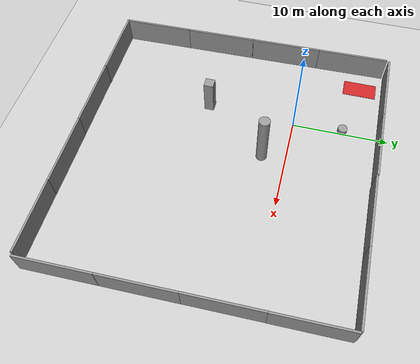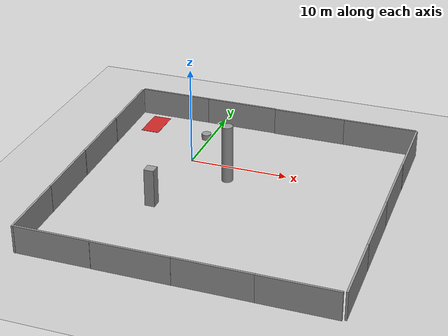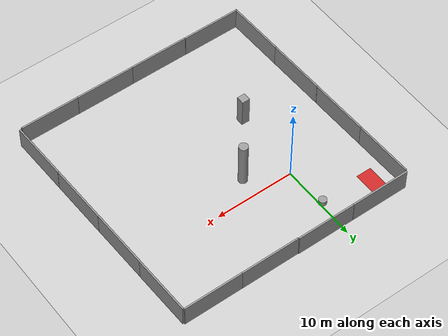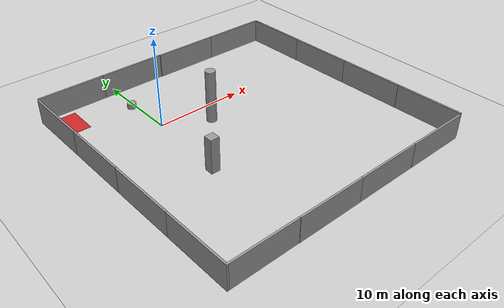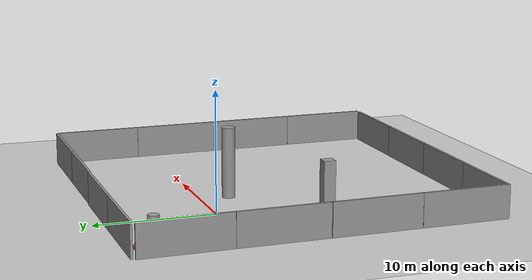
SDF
<sdf version="1.7">
 <world name="default">
  <light name="sun" type="directional">
   <pose>0 0 10 0 -0 0</pose>
   <diffuse>0.8 0.8 0.8 1</diffuse>
   <specular>0.2 0.2 0.2 1</specular>
   <attenuation>
    <range>1000</range>
    <constant>0.9</constant>
    <linear>0.01</linear>
    <quadratic>0.001</quadratic>
   </attenuation>
   <direction>-0.5 0.1 -0.9</direction>
   <spot><inner_angle>0</inner_angle><outer_angle>0</outer_angle><falloff>0</falloff></spot>
  </light>
  <model name="ground_plane">
   <static>1</static>
   <link name="link">
    <collision name="collision">
     <geometry><plane><normal>0 0 1</normal><size>100 100</size></plane></geometry>
     <surface>
      <contact><collide_bitmask>65535</collide_bitmask></contact>
      <friction><ode><mu>100</mu><mu2>50</mu2></ode></friction>
     </surface>
    </collision>
    <visual name="visual">
     <cast_shadows>0</cast_shadows>
     <geometry><plane><normal>0 0 1</normal><size>100 100</size></plane></geometry>
     <material>
      <script><uri>file://media/materials/scripts/gazebo.material</uri><name>Gazebo/Grey</name></script>
     </material>
    </visual>
   </link>
  </model>
  <gravity>0 0 -9.8</gravity>
  <magnetic_field>6e-06 2.3e-05 -4.2e-05</magnetic_field>
  <atmosphere type="adiabatic"/>
  <physics type="ode">
   <max_step_size>0.001</max_step_size>
   <real_time_factor>1</real_time_factor>
   <real_time_update_rate>1000</real_time_update_rate>
  </physics>
  <scene><ambient>0.4 0.4 0.4 1</ambient><background>0.7 0.7 0.7 1</background><shadows>1</shadows></scene>
  <spherical_coordinates>
   <surface_model>EARTH_WGS84</surface_model>
   <latitude_deg>0</latitude_deg>
   <longitude_deg>0</longitude_deg>
   <elevation>0</elevation>
   <heading_deg>0</heading_deg>
  </spherical_coordinates>
  <model name="grey_wall">
   <static>1</static>
   <link name="link">
    <pose>0 0 1.4 0 -0 0</pose>
    <collision name="collision"><geometry><box><size>7.5 0.2 2.8</size></box></geometry></collision>
    <visual name="visual">
     <cast_shadows>0</cast_shadows>
     <geometry><box><size>7.5 0.2 2.8</size></box></geometry>
     <material>
      <script>
       <uri>model://grey_wall/materials/scripts</uri>
       <uri>model://grey_wall/materials/textures</uri>
       <name>vrc/grey_wall</name>
      </script>
     </material>
    </visual>
   </link>
   <pose>-5.28411 8.94306 0 0 -0 0</pose>
  </model>
  <model name="grey_wall_0">
   <static>1</static>
   <link name="link">
    <pose>0 0 1.4 0 -0 0</pose>
    <collision name="collision"><geometry><box><size>7.5 0.2 2.8</size></box></geometry></collision>
    <visual name="visual">
     <cast_shadows>0</cast_shadows>
     <geometry><box><size>7.5 0.2 2.8</size></box></geometry>
     <material>
      <script>
       <uri>model://grey_wall/materials/scripts</uri>
       <uri>model://grey_wall/materials/textures</uri>
       <name>vrc/grey_wall</name>
      </script>
     </material>
    </visual>
   </link>
   <pose>2.23596 8.94056 0 0 -0 0</pose>
  </model>
  <model name="grey_wall_1">
   <static>1</static>
   <link name="link">
    <pose>0 0 1.4 0 -0 0</pose>
    <collision name="collision"><geometry><box><size>7.5 0.2 2.8</size></box></geometry></collision>
    <visual name="visual">
     <cast_shadows>0</cast_shadows>
     <geometry><box><size>7.5 0.2 2.8</size></box></geometry>
     <material>
      <script>
       <uri>model://grey_wall/materials/scripts</uri>
       <uri>model://grey_wall/materials/textures</uri>
       <name>vrc/grey_wall</name>
      </script>
     </material>
    </visual>
   </link>
   <pose>-9.03702 4.94701 0 0 0 -1.55</pose>
  </model>
  <model name="grey_wall_1_clone">
   <static>1</static>
   <link name="link">
    <pose>0 0 1.4 0 -0 0</pose>
    <collision name="collision"><geometry><box><size>7.5 0.2 2.8</size></box></geometry></collision>
    <visual name="visual">
     <cast_shadows>0</cast_shadows>
     <geometry><box><size>7.5 0.2 2.8</size></box></geometry>
     <material>
      <script>
       <uri>model://grey_wall/materials/scripts</uri>
       <uri>model://grey_wall/materials/textures</uri>
       <name>vrc/grey_wall</name>
      </script>
     </material>
    </visual>
   </link>
   <pose>-8.88636 -2.56773 0 0 0 -1.55</pose>
  </model>
  <model name="grey_wall_1_clone_clone">
   <static>1</static>
   <link name="link">
    <pose>0 0 1.4 0 -0 0</pose>
    <collision name="collision"><geometry><box><size>7.5 0.2 2.8</size></box></geometry></collision>
    <visual name="visual">
     <cast_shadows>0</cast_shadows>
     <geometry><box><size>7.5 0.2 2.8</size></box></geometry>
     <material>
      <script>
       <uri>model://grey_wall/materials/scripts</uri>
       <uri>model://grey_wall/materials/textures</uri>
       <name>vrc/grey_wall</name>
      </script>
     </material>
    </visual>
   </link>
   <pose>-8.74116 -10.1056 0 0 0 -1.55</pose>
  </model>
  <model name="grey_wall_1_clone_clone_clone">
   <static>1</static>
   <link name="link">
    <pose>0 0 1.4 0 -0 0</pose>
    <collision name="collision"><geometry><box><size>7.5 0.2 2.8</size></box></geometry></collision>
    <visual name="visual">
     <cast_shadows>0</cast_shadows>
     <geometry><box><size>7.5 0.2 2.8</size></box></geometry>
     <material>
      <script>
       <uri>model://grey_wall/materials/scripts</uri>
       <uri>model://grey_wall/materials/textures</uri>
       <name>vrc/grey_wall</name>
      </script>
     </material>
    </visual>
   </link>
   <pose>-8.58924 -17.6095 0 0 0 -1.55</pose>
  </model>
  <model name="grey_wall_clone">
   <static>1</static>
   <link name="link">
    <pose>0 0 1.4 0 -0 0</pose>
    <collision name="collision"><geometry><box><size>7.5 0.2 2.8</size></box></geometry></collision>
    <visual name="visual">
     <cast_shadows>0</cast_shadows>
     <geometry><box><size>7.5 0.2 2.8</size></box></geometry>
     <material>
      <script>
       <uri>model://grey_wall/materials/scripts</uri>
       <uri>model://grey_wall/materials/textures</uri>
       <name>vrc/grey_wall</name>
      </script>
     </material>
    </visual>
   </link>
   <pose>9.755 8.87215 0 0 -0 0</pose>
  </model>
  <model name="grey_wall_clone_clone">
   <static>1</static>
   <link name="link">
    <pose>0 0 1.4 0 -0 0</pose>
    <collision name="collision"><geometry><box><size>7.5 0.2 2.8</size></box></geometry></collision>
    <visual name="visual">
     <cast_shadows>0</cast_shadows>
     <geometry><box><size>7.5 0.2 2.8</size></box></geometry>
     <material>
      <script>
       <uri>model://grey_wall/materials/scripts</uri>
       <uri>model://grey_wall/materials/textures</uri>
       <name>vrc/grey_wall</name>
      </script>
     </material>
    </visual>
   </link>
   <pose>17.2526 8.86719 0 0 -0 0</pose>
  </model>
  <model name="grey_wall_clone_clone_0">
   <static>1</static>
   <link name="link">
    <pose>0 0 1.4 0 -0 0</pose>
    <collision name="collision"><geometry><box><size>7.5 0.2 2.8</size></box></geometry></collision>
    <visual name="visual">
     <cast_shadows>0</cast_shadows>
     <geometry><box><size>7.5 0.2 2.8</size></box></geometry>
     <material>
      <script>
       <uri>model://grey_wall/materials/scripts</uri>
       <uri>model://grey_wall/materials/textures</uri>
       <name>vrc/grey_wall</name>
      </script>
     </material>
    </visual>
   </link>
   <pose>-4.82051 -21.2466 0 0 -0 0</pose>
  </model>
  <model name="grey_wall_clone_clone_1">
   <static>1</static>
   <link name="link">
    <pose>0 0 1.4 0 -0 0</pose>
    <collision name="collision"><geometry><box><size>7.5 0.2 2.8</size></box></geometry></collision>
    <visual name="visual">
     <cast_shadows>0</cast_shadows>
     <geometry><box><size>7.5 0.2 2.8</size></box></geometry>
     <material>
      <script>
       <uri>model://grey_wall/materials/scripts</uri>
       <uri>model://grey_wall/materials/textures</uri>
       <name>vrc/grey_wall</name>
      </script>
     </material>
    </visual>
   </link>
   <pose>2.70417 -21.269 0 0 -0 0</pose>
  </model>
  <model name="grey_wall_clone_clone_2">
   <static>1</static>
   <link name="link">
    <pose>0 0 1.4 0 -0 0</pose>
    <collision name="collision"><geometry><box><size>7.5 0.2 2.8</size></box></geometry></collision>
    <visual name="visual">
     <cast_shadows>0</cast_shadows>
     <geometry><box><size>7.5 0.2 2.8</size></box></geometry>
     <material>
      <script>
       <uri>model://grey_wall/materials/scripts</uri>
       <uri>model://grey_wall/materials/textures</uri>
       <name>vrc/grey_wall</name>
      </script>
     </material>
    </visual>
   </link>
   <pose>10.1916 -21.257 0 0 -0 0</pose>
  </model>
  <model name="grey_wall_clone_clone_3">
   <static>1</static>
   <link name="link">
    <pose>0 0 1.4 0 -0 0</pose>
    <collision name="collision"><geometry><box><size>7.5 0.2 2.8</size></box></geometry></collision>
    <visual name="visual">
     <cast_shadows>0</cast_shadows>
     <geometry><box><size>7.5 0.2 2.8</size></box></geometry>
     <material>
      <script>
       <uri>model://grey_wall/materials/scripts</uri>
       <uri>model://grey_wall/materials/textures</uri>
       <name>vrc/grey_wall</name>
      </script>
     </material>
    </visual>
   </link>
   <pose>17.6653 -21.2683 0 0 -0 0</pose>
  </model>
  <model name="grey_wall_1_clone_0">
   <static>1</static>
   <link name="link">
    <pose>0 0 1.4 0 -0 0</pose>
    <collision name="collision"><geometry><box><size>7.5 0.2 2.8</size></box></geometry></collision>
    <visual name="visual">
     <cast_shadows>0</cast_shadows>
     <geometry><box><size>7.5 0.2 2.8</size></box></geometry>
     <material>
      <script>
       <uri>model://grey_wall/materials/scripts</uri>
       <uri>model://grey_wall/materials/textures</uri>
       <name>vrc/grey_wall</name>
      </script>
     </material>
    </visual>
   </link>
   <pose>21.1622 5.0533 0 0 0 -1.55</pose>
  </model>
  <model name="grey_wall_1_clone_1">
   <static>1</static>
   <link name="link">
    <pose>0 0 1.4 0 -0 0</pose>
    <collision name="collision"><geometry><box><size>7.5 0.2 2.8</size></box></geometry></collision>
    <visual name="visual">
     <cast_shadows>0</cast_shadows>
     <geometry><box><size>7.5 0.2 2.8</size></box></geometry>
     <material>
      <script>
       <uri>model://grey_wall/materials/scripts</uri>
       <uri>model://grey_wall/materials/textures</uri>
       <name>vrc/grey_wall</name>
      </script>
     </material>
    </visual>
   </link>
   <pose>21.3037 -2.43604 0 0 0 -1.55</pose>
  </model>
  <model name="grey_wall_1_clone_2">
   <static>1</static>
   <link name="link">
    <pose>0 0 1.4 0 -0 0</pose>
    <collision name="collision"><geometry><box><size>7.5 0.2 2.8</size></box></geometry></collision>
    <visual name="visual">
     <cast_shadows>0</cast_shadows>
     <geometry><box><size>7.5 0.2 2.8</size></box></geometry>
     <material>
      <script>
       <uri>model://grey_wall/materials/scripts</uri>
       <uri>model://grey_wall/materials/textures</uri>
       <name>vrc/grey_wall</name>
      </script>
     </material>
    </visual>
   </link>
   <pose>21.4676 -9.92866 0 0 0 -1.55</pose>
  </model>
  <model name="grey_wall_1_clone_3">
   <static>1</static>
   <link name="link">
    <pose>0 0 1.4 0 -0 0</pose>
    <collision name="collision"><geometry><box><size>7.5 0.2 2.8</size></box></geometry></collision>
    <visual name="visual">
     <cast_shadows>0</cast_shadows>
     <geometry><box><size>7.5 0.2 2.8</size></box></geometry>
     <material>
      <script>
       <uri>model://grey_wall/materials/scripts</uri>
       <uri>model://grey_wall/materials/textures</uri>
       <name>vrc/grey_wall</name>
      </script>
     </material>
    </visual>
   </link>
   <pose>21.6236 -17.4551 0 0 0 -1.55</pose>
  </model>
  <model name="unit_box">
   <pose>-6.66305 6.46222 0.015234 -7e-06 5e-06 0.000632</pose>
   <link name="link">
    <inertial>
     <mass>1</mass>
     <inertia>
      <ixx>0.166667</ixx>
      <ixy>0</ixy>
      <ixz>0</ixz>
      <iyy>0.166667</iyy>
      <iyz>0</iyz>
      <izz>0.166667</izz>
     </inertia>
    </inertial>
    <collision name="collision"><geometry><box><size>1.92629 3.55861 0.030547</size></box></geometry></collision>
    <visual name="visual">
     <geometry><box><size>1.92629 3.55861 0.030547</size></box></geometry>
     <material>
      <script><name>Gazebo/Red</name><uri>file://media/materials/scripts/gazebo.material</uri></script>
     </material>
    </visual>
   </link>
  </model>
  <model name="obstacle_2">
   <pose>4.7267 -2.49814 2.97341 0 -0 0.001763</pose>
   <link name="link">
    <inertial>
     <mass>1</mass>
     <inertia><ixx>0.145833</ixx><ixy>0</ixy><ixz>0</ixz><iyy>0.145833</iyy><iyz>0</iyz><izz>0.125</izz></inertia>
    </inertial>
    <collision name="collision">
     <geometry><cylinder><radius>0.55881</radius><length>5.94683</length></cylinder></geometry>
    </collision>
    <visual name="visual">
     <geometry><cylinder><radius>0.55881</radius><length>5.94683</length></cylinder></geometry>
     <material>
      <script><name>Gazebo/Grey</name><uri>file://media/materials/scripts/gazebo.material</uri></script>
     </material>
    </visual>
   </link>
  </model>
  <model name="obstacle_1">
   <pose>-0.46778 -9.28428 1.9222 0 -1e-06 -0.003869</pose>
   <link name="link">
    <inertial>
     <mass>1</mass>
     <inertia>
      <ixx>0.166667</ixx>
      <ixy>0</ixy>
      <ixz>0</ixz>
      <iyy>0.166667</iyy>
      <iyz>0</iyz>
      <izz>0.166667</izz>
     </inertia>
    </inertial>
    <collision name="collision"><geometry><box><size>1 1 3.84441</size></box></geometry></collision>
    <visual name="visual">
     <geometry><box><size>1 1 3.84441</size></box></geometry>
     <material>
      <script><name>Gazebo/Grey</name><uri>file://media/materials/scripts/gazebo.material</uri></script>
     </material>
    </visual>
   </link>
  </model>
  <model name="obstacle_3">
   <pose>-0.388494 5.21201 0.296655 -0 -0 -0.002555</pose>
   <link name="link">
    <inertial>
     <mass>1</mass>
     <inertia><ixx>0.145833</ixx><ixy>0</ixy><ixz>0</ixz><iyy>0.145833</iyy><iyz>0</iyz><izz>0.125</izz></inertia>
    </inertial>
    <collision name="collision">
     <geometry><cylinder><radius>0.5</radius><length>0.593328</length></cylinder></geometry>
    </collision>
    <visual name="visual">
     <geometry><cylinder><radius>0.5</radius><length>0.593328</length></cylinder></geometry>
     <material>
      <script><name>Gazebo/Grey</name><uri>file://media/materials/scripts/gazebo.material</uri></script>
     </material>
    </visual>
   </link>
  </model>
 </world>
</sdf>
